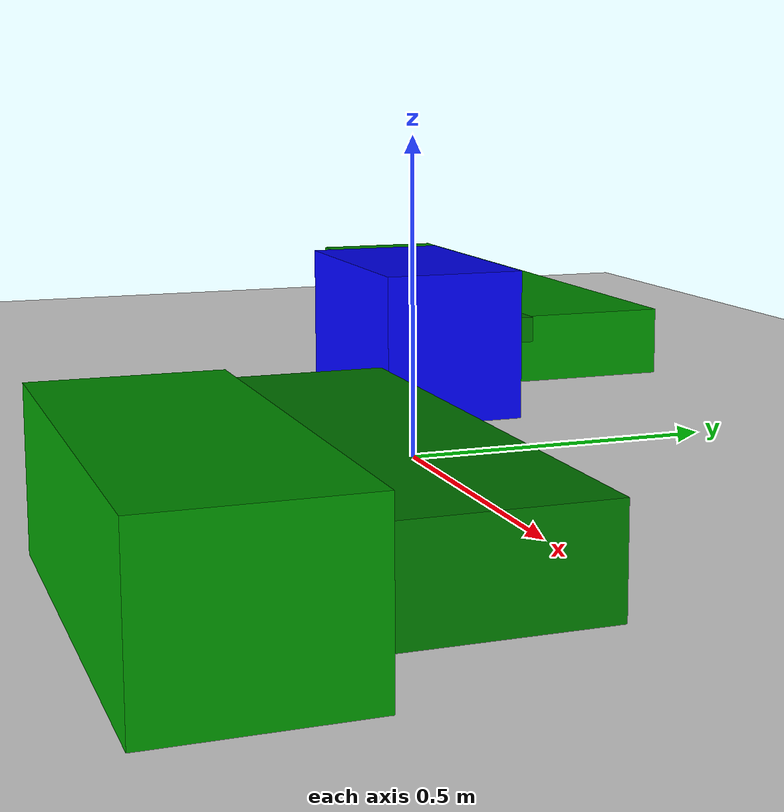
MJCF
<mujoco>
    <worldbody>
    <light diffuse=".5 .5 .5" pos="0 0 3" dir="0 0 -1"/>
    <geom type="plane" size="5 5 0.1" rgba=".9 0.9 0.9 1"/>
    <body name="main body" pos="0 0 .2">
        <joint type="free"/>
        <geom type="box" size="0.1823618432185498 0.10347852472478945 0.10960618824937188" rgba="0 0 1 1" mass="1"/>
        <site name="marker" pos="0 0 0" size="0.05"/>
        <site name="robot_center" pos="0 0 0" size="0.01"/>
        <body name="left_leg1" pos="-0.38 0.1612276834937822 -0.016055586775445555">
            <joint name="left_leg1_joint" type="hinge" axis="0 1 0" pos="0 0 0"/>
            <geom type="box" size="0.3416734528961997 0.05774915876899273 0.02" rgba="0 .5 0 1" mass="1"/>
            <body name="left_leg2" pos="-0.2607771055325429 0.1803729220044419 -0.04">
                <joint name="left_leg2_joint" type="hinge" axis="0 1 0" pos="0 0 0"/>
                <geom type="box" size="0.5553004084121641 0.12262376323544917 0.05415659543259784" rgba="0 .6 0 1" mass="1"/>
            </body>
        </body>
        <body name="right_leg1" pos="0.5466207732215939 -0.23913327762903053 -0.09338978554123224">
            <joint name="right_leg1_joint" type="hinge" axis="0 1 0" pos="0 0 0"/>
            <geom type="box" size="0.39580820314313025 0.13565475290424106 0.06732011548997069" rgba="0 .5 0 1" mass="1"/>
            <body name="right_leg2" pos="0.1119876447879879 -0.26427520760513146 -0.011688695269279995">
                <joint name="right_leg2_joint" type="hinge" axis="0 1 0" pos="0 0 0"/>
                <geom type="box" size="0.3347364345708415 0.1286204547008904 0.12327901580387958" rgba="0 .6 0 1" mass="1"/>
            </body>
        </body>
    </body>
    </worldbody>
    <sensor>
        <framepos objtype="site" objname="marker"/>
        <velocimeter name="robot_velocity" site="robot_center"/>
    </sensor>
    <actuator>
        <position joint="left_leg1_joint" kp="10"/>
        <position joint="left_leg2_joint" kp="10"/>
        <position joint="right_leg1_joint" kp="10"/>
        <position joint="right_leg2_joint" kp="10"/>
    </actuator>
</mujoco>
